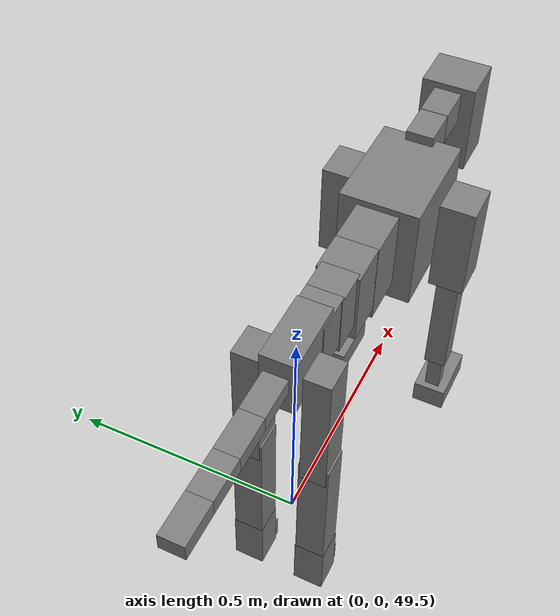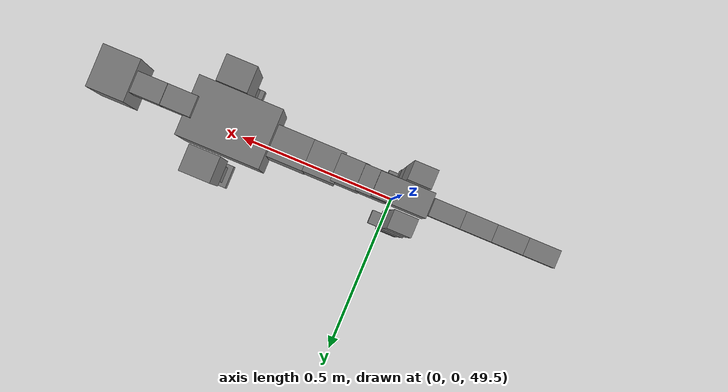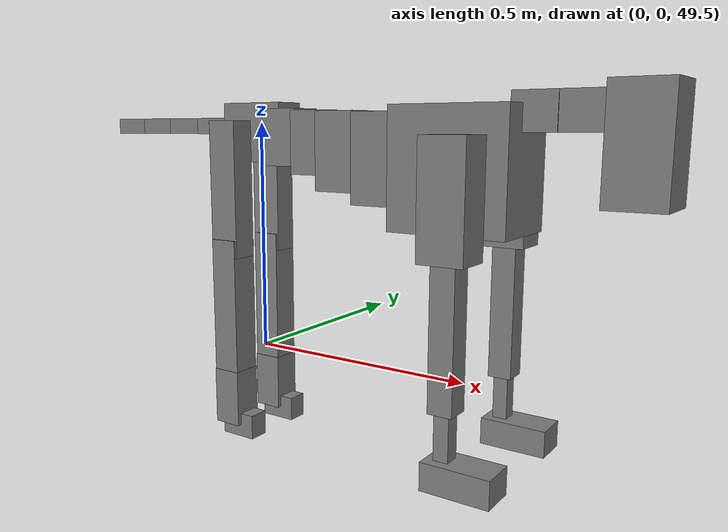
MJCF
<mujoco model="dog">

    <default>
        <joint armature="0.02" stiffness="1" damping="0.2" limited="true"/>
        <geom condim="3" friction="1 0.05 0.05" margin="0.01"/>
        <motor ctrllimited="true" ctrlrange="-1.0 1.0" forcelimited="true" gear="50"/>
    </default>

    <compiler inertiafromgeom="true" angle="radian"/>

    <option timestep="0.016" iterations="50" tolerance="1e-10" solver="Newton" jacobian="dense" cone="pyramidal"/>

    <size nconmax="20000" njmax="60000" nstack="5000000"/>
    <visual>
        <map force="0.1" zfar="30"/>
        <rgba haze="0.15 0.25 0.35 1"/>
        <quality shadowsize="2048"/>
        <global offwidth="800" offheight="800"/>
    </visual>

    <asset>
        <texture type="skybox" builtin="gradient" rgb1="0.3 0.5 0.7" rgb2="0 0 0" width="512" height="512"/>
        <texture name="texplane" type="2d" builtin="checker" rgb1=".2 .3 .4" rgb2=".1 0.15 0.2" width="512" height="512"
                 mark="cross" markrgb=".8 .8 .8"/>
        <texture name="texgeom" type="cube" builtin="flat" mark="cross" width="127" height="1278" rgb1="0.8 0.6 0.4"
                 rgb2="0.8 0.6 0.4" markrgb="1 1 1" random="0.01"/>

        <material name="matplane" reflectance="0.3" texture="texplane" texrepeat="1 1" texuniform="true"/>
        <material name="matgeom" texture="texgeom" texuniform="true" rgba="0.8 0.6 .4 1"/>
    </asset>

    <worldbody>
        <geom name="floor" pos="0 0 0" size="0 0 .25" type="plane" material="matplane" condim="3"/>

        <light directional="false" diffuse=".2 .2 .2" specular="0 0 0" pos="0 0 5" dir="0 0 -1" castshadow="false"/>
        <light mode="targetbodycom" target="torso" directional="false" diffuse=".8 .8 .8" specular="0.3 0.3 0.3"
               pos="0 0 4.0" dir="0 0 -1"/>

        <body name="root" pos="0 0 50">
            <freejoint name="root_1"/>
            <geom type="box" pos="0 0 -0.02" size="0.0774  0.0358  0.063" density="2030"/>

            <body name="spine1" pos="0.054 0 0">
                <joint name="spine1_y" axis="0 1 0" range="0 0.7" limited="true"/>
                <geom type="box" pos="0.02375 0 -0.03" size="0.04375  0.0375  0.05985" density="2030"/>

                <body name="spine2" pos="0.0612 0 0">
                    <joint name="spine2_y" axis="0 1 0" range="-0.15 0.15" limited="true"/>
                    <geom type="box" pos="0.03555  0  -0.04" size="0.04055  0.039  0.06615" density="2030"/>

                    <body name="spine3" pos="0.0730 0 0">
                        <joint name="spine3_y" axis="0 1 0" range="-0.15 0.15" limited="true"/>
                        <geom type="box" pos="0.03555  0  -0.057" size="0.04555  0.0445  0.081" density="2030"/>

                        <body name="spine4" pos="0.0780 0 0">
                            <joint name="spine4_y" axis="0 1 0" range="-0.15 0.15" limited="true"/>
                            <geom type="box" pos="0.05265  0  -0.07" size="0.05265  0.045  0.09135" density="2030"/>

                            <body name="torso" pos="0.1082 0 0">
                                <joint name="torso_y" axis="0 1 0" range="-0.15 0.15" limited="true"/>
                                <geom type="box" pos="0.11925  0  -0.085" size="0.11925  0.085  0.11745"
                                      density="2030"/>

                                <body name="neck1" pos="0.2160  0   0.0180">
                                    <joint name="neck1_y" axis="0 1 0" range="-1.2  -1" limited="true"/>
                                    <geom type="box" pos="0.0423  0  0" size="0.0423  0.03  0.036" density="2325"/>

                                    <body name="neck2" pos="0.0853  0  0">
                                        <joint name="neck2_y" axis="0 1 0" range="0.1  0" limited="true"/>
                                        <geom type="box" pos="0.0423  0  0" size="0.0423  0.03  0.036" density="2325"/>

                                        <body name="head" pos="0.0853  0  0">
                                            <joint name="head_y" axis="0 1 0" range="-0.3  -0.2" limited="true"/>
                                            <geom type="box" pos="0.0531  0  -0.055" size="0.0531  0.06  0.1044"
                                                  density="4030"/>

                                        </body>
                                    </body>
                                </body>

                                <body name="front_shoulder" pos="0.156  0   -0.0480">
                                    <joint name="front_shoulder_y" axis="0 1 0" range="-1 1.5" limited="true"/>
                                    <geom type="box" pos="0 0.13 -0.0833" size="0.0452  0.0386  0.1100" density="1158"/>
                                    <geom type="box" pos="0 -0.13 -0.0833" size="0.0452  0.0386  0.1100"
                                          density="1158"/>

                                    <body name="front_elbow" pos="0  0  -0.1667">
                                        <joint name="front_elbow_y" axis="0 1 0" range="-2 0" limited="true"/>
                                        <geom type="box" pos="0 0.13 -0.1483" size="0.0242  0.0247  0.1483"
                                              density="1081"/>
                                        <geom type="box" pos="0 -0.13 -0.1483" size="0.0242  0.0247  0.1483"
                                              density="1081"/>

                                        <body name="front_wrist" pos="0  0  -0.2966">
                                            <joint name="front_wrist_y" axis="0 1 0" range="-0.2 0" limited="true"/>
                                            <geom type="box" pos="0 0.13 -0.0516" size="0.0149  0.0165  0.0647"
                                                  density="1664"/>
                                            <geom type="box" pos="0 -0.13 -0.0516" size="0.0149  0.0165  0.0647"
                                                  density="1664"/>

                                            <body name="front_finger_end" pos="0  0  -0.1032">
                                                <joint name="front_finger_y" axis="0 1 0" range="-0.4 1"
                                                       limited="true"/>
                                                <geom type="box" pos="0.0372  0.13  -0.0125"
                                                      size="0.0682  0.0372  0.0275" density="1515"/>
                                                <geom type="box" pos="0.0372  -0.13  -0.0125"
                                                      size="0.0682  0.0372  0.0275" density="1515"/>

                                            </body>

                                        </body>
                                    </body>
                                </body>

                            </body>
                        </body>
                    </body>
                </body>
            </body>

            <body name="back_hip" pos="-0.03 0 -0.018">
                <joint name="back_hip_y" axis="0 1 0" range="-1.5 0.3" limited="true"/>
                <geom type="box" pos="0 0.07 -0.1237" size="0.0347  0.0272  0.1465" density="1154"/>
                <geom type="box" pos="0 -0.07 -0.1237" size="0.0347  0.0272  0.1465" density="1154"/>

                <body name="back_knee" pos="0  0  -0.2475">
                    <joint name="back_knee_y" axis="0 1 0" range="0 2.8" limited="true"/>
                    <geom type="box" pos="0 0.07 -0.1445" size="0.0316  0.0311  0.1601" density="1227"/>
                    <geom type="box" pos="0 -0.07 -0.1445" size="0.0316  0.0311  0.1601" density="1227"/>

                    <body name="back_ankle" pos="0  0  -0.2891">
                        <joint name="back_ankle_y" axis="0 1 0" range="-2.2 0" limited="true"/>
                        <geom type="box" pos="0 0.07 -0.0506" size="0.0323  0.0323  0.0618" density="1284"/>
                        <geom type="box" pos="0 -0.07 -0.0506" size="0.0323  0.0323  0.0618" density="1284"/>

                        <body name="back_toe_end" pos="0  0  -0.1011">
                            <joint name="back_toe_y" axis="0 1 0" range="-0.4 1" limited="true"/>
                            <geom type="box" pos="0.0225  0.07  -0.0116" size="0.0413  0.0225  0.0266" density="1515"/>
                            <geom type="box" pos="0.0225  -0.07  -0.0116" size="0.0413  0.0225  0.0266" density="1515"/>

                        </body>
                    </body>
                </body>
            </body>

            <body name="tail1" pos="-0.074 0 -0.006">
                <joint name="tail1_y" axis="0 1 0" range="-0.2 0.2" limited="true"/>
                <geom type="box" pos="-0.0536  0  0" size="0.045  0.025  0.0175" density="1587"/>

                <body name="tail2" pos="-0.09 0 0">
                    <joint name="tail2_y" axis="0 1 0" range="-0.2 0.2" limited="true"/>
                    <geom type="box" pos="-0.0536  0  0" size="0.045  0.025  0.0175" density="1587"/>

                    <body name="tail3" pos="-0.09 0 0">
                        <joint name="tail3_y" axis="0 1 0" range="-0.2 0.2" limited="true"/>
                        <geom type="box" pos="-0.0536  0  0" size="0.045  0.025  0.0175" density="1587"/>

                        <body name="tail4" pos="-0.09 0 0">
                            <joint name="tail4_y" axis="0 1 0" range="-0.2 0.2" limited="true"/>
                            <geom type="box" pos="-0.0536  0  0" size="0.045  0.025  0.0175" density="1587"/>

                        </body>
                    </body>
                </body>
            </body>
        </body>
    </worldbody>

    <actuator>
        <motor joint="spine1_y" forcerange="-150 150     "/>
        <motor joint="spine2_y" forcerange="-150 150     "/>
        <motor joint="spine3_y" forcerange="-150 150     "/>
        <motor joint="spine4_y" forcerange="-150 150     "/>
        <motor joint="torso_y" forcerange="-150 150     "/>
        <motor joint="neck1_y" forcerange="-100 100       "/>
        <motor joint="neck2_y" forcerange="-100 100       "/>
        <motor joint="head_y" forcerange="-150 150       "/>
        <motor joint="front_shoulder_y" forcerange="-185.80 171.87"/>
        <motor joint="front_elbow_y" forcerange="-164.87 114.80"/>
        <motor joint="front_wrist_y" forcerange="-53.47 78.68"/>
        <motor joint="front_finger_y" forcerange="-68.39 89.96"/>
        <motor joint="back_hip_y" forcerange="-324.56 238.05"/>
        <motor joint="back_knee_y" forcerange="-303.67 349.06"/>
        <motor joint="back_angle_y" forcerange="-174.28 242.53"/>
        <motor joint="back_toe_y" forcerange="-74.98 25.14"/>
        <motor joint="tail1_y" forcerange="-50 50     "/>
        <motor joint="tail2_y" forcerange="-50 50     "/>
        <motor joint="tail3_y" forcerange="-50 50     "/>
        <motor joint="tail4_y" forcerange="-50 50     "/>
    </actuator>
</mujoco>
